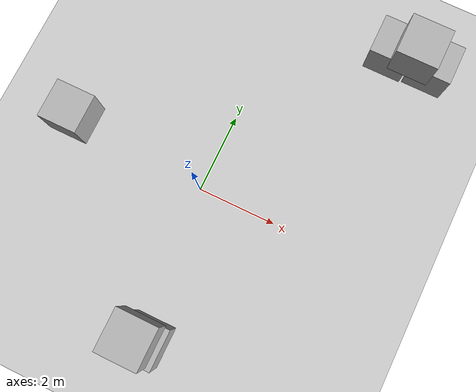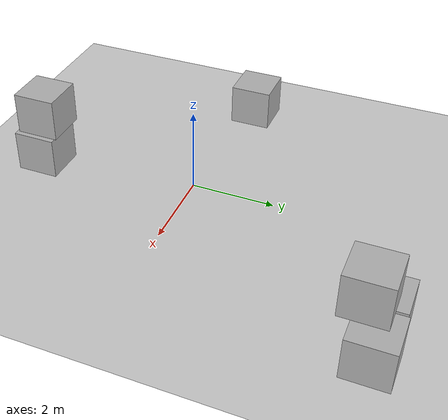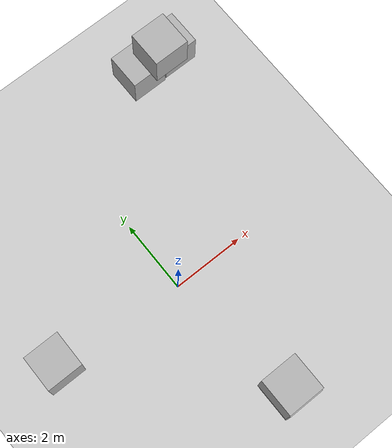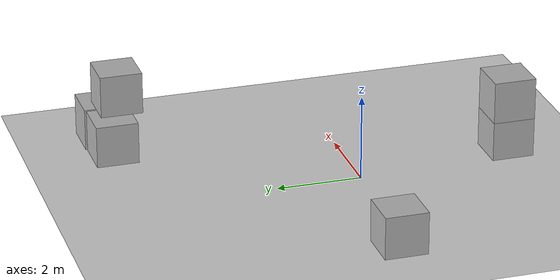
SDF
<?xml version="1.0"?>
<sdf version='1.10'>
  <world name='empty'>
    <physics name='1ms' type='ignored'>
      <max_step_size>0.001</max_step_size>
      <real_time_factor>1</real_time_factor>
      <real_time_update_rate>1000</real_time_update_rate>
    </physics>
    <plugin name='gz::sim::systems::Physics' filename='gz-sim-physics-system'/>
    <plugin name='gz::sim::systems::UserCommands' filename='gz-sim-user-commands-system'/>
    <plugin name='gz::sim::systems::SceneBroadcaster' filename='gz-sim-scene-broadcaster-system'/>
    <plugin name='gz::sim::systems::Contact' filename='gz-sim-contact-system'/>
    <plugin name='gz::sim::systems::Sensors' filename='gz-sim-sensors-system'/>
    <gravity>0 0 -9.8000000000000007</gravity>
    <magnetic_field>5.5644999999999998e-06 2.2875799999999999e-05 -4.2388400000000002e-05</magnetic_field>
    <atmosphere type='adiabatic'/>
    <scene>
      <ambient>0.400000006 0.400000006 0.400000006 1</ambient>
      <background>0.699999988 0.699999988 0.699999988 1</background>
      <shadows>true</shadows>
    </scene>
    <model name='ground_plane'>
      <static>true</static>
      <link name='link'>
        <collision name='collision'>
          <geometry>
            <plane>
              <normal>0 0 1</normal>
              <size>100 100</size>
            </plane>
          </geometry>
          <surface>
            <friction>
              <ode/>
            </friction>
            <bounce/>
            <contact/>
          </surface>
        </collision>
        <visual name='visual'>
          <geometry>
            <plane>
              <normal>0 0 1</normal>
              <size>100 100</size>
            </plane>
          </geometry>
          <material>
            <ambient>0.800000012 0.800000012 0.800000012 1</ambient>
            <diffuse>0.800000012 0.800000012 0.800000012 1</diffuse>
            <specular>0.800000012 0.800000012 0.800000012 1</specular>
          </material>
        </visual>
        <pose>0 0 0 0 0 0</pose>
        <inertial>
          <pose>0 0 0 0 0 0</pose>
          <mass>1</mass>
          <inertia>
            <ixx>1</ixx>
            <ixy>0</ixy>
            <ixz>0</ixz>
            <iyy>1</iyy>
            <iyz>0</iyz>
            <izz>1</izz>
          </inertia>
        </inertial>
        <enable_wind>false</enable_wind>
      </link>
      <pose>0 0 0 0 0 0</pose>
      <self_collide>false</self_collide>
    </model>
    <model name='box'>
      <pose>0.46925724908663136 -3.7243041404713408 0.49999998990649808 -2.9880355912715605e-07 -2.7943082543804519e-07 -2.098298258005936e-08</pose>
      <link name='box_link'>
        <inertial>
          <inertia>
            <ixx>0.16666</ixx>
            <ixy>0</ixy>
            <ixz>0</ixz>
            <iyy>0.16666</iyy>
            <iyz>0</iyz>
            <izz>0.16666</izz>
          </inertia>
          <mass>1</mass>
          <pose>0 0 0 0 0 0</pose>
        </inertial>
        <collision name='box_collision'>
          <geometry>
            <box>
              <size>1 1 1</size>
            </box>
          </geometry>
          <surface>
            <friction>
              <ode/>
            </friction>
            <bounce/>
            <contact/>
          </surface>
        </collision>
        <visual name='box_visual'>
          <geometry>
            <box>
              <size>1 1 1</size>
            </box>
          </geometry>
          <material>
            <ambient>0.300000012 0.300000012 0.300000012 1</ambient>
            <diffuse>0.699999988 0.699999988 0.699999988 1</diffuse>
            <specular>1 1 1 1</specular>
          </material>
        </visual>
        <pose>0 0 0 0 0 0</pose>
        <enable_wind>false</enable_wind>
      </link>
      <static>false</static>
      <self_collide>false</self_collide>
    </model>
    <model name='box_0'>
      <pose>0.3434151123649572 -3.6765694865789622 1.4999990716823073 -3.0287731065792687e-07 -3.1087145384578591e-07 -1.5182614716519812e-08</pose>
      <link name='box_link'>
        <inertial>
          <inertia>
            <ixx>0.16666</ixx>
            <ixy>0</ixy>
            <ixz>0</ixz>
            <iyy>0.16666</iyy>
            <iyz>0</iyz>
            <izz>0.16666</izz>
          </inertia>
          <mass>1</mass>
          <pose>0 0 0 0 0 0</pose>
        </inertial>
        <collision name='box_collision'>
          <geometry>
            <box>
              <size>1 1 1</size>
            </box>
          </geometry>
          <surface>
            <friction>
              <ode/>
            </friction>
            <bounce/>
            <contact/>
          </surface>
        </collision>
        <visual name='box_visual'>
          <geometry>
            <box>
              <size>1 1 1</size>
            </box>
          </geometry>
          <material>
            <ambient>0.300000012 0.300000012 0.300000012 1</ambient>
            <diffuse>0.699999988 0.699999988 0.699999988 1</diffuse>
            <specular>1 1 1 1</specular>
          </material>
        </visual>
        <pose>0 0 0 0 0 0</pose>
        <enable_wind>false</enable_wind>
      </link>
      <static>false</static>
      <self_collide>false</self_collide>
    </model>
    <model name='box_1'>
      <pose>3.8670279733296899 5.1916784520283183 0.49999999004518225 2.6082649398111895e-10 1.9329553968995906e-08 1.5409594235111986e-07</pose>
      <link name='box_link'>
        <inertial>
          <inertia>
            <ixx>0.16666</ixx>
            <ixy>0</ixy>
            <ixz>0</ixz>
            <iyy>0.16666</iyy>
            <iyz>0</iyz>
            <izz>0.16666</izz>
          </inertia>
          <mass>1</mass>
          <pose>0 0 0 0 0 0</pose>
        </inertial>
        <collision name='box_collision'>
          <geometry>
            <box>
              <size>1 1 1</size>
            </box>
          </geometry>
          <surface>
            <friction>
              <ode/>
            </friction>
            <bounce/>
            <contact/>
          </surface>
        </collision>
        <visual name='box_visual'>
          <geometry>
            <box>
              <size>1 1 1</size>
            </box>
          </geometry>
          <material>
            <ambient>0.300000012 0.300000012 0.300000012 1</ambient>
            <diffuse>0.699999988 0.699999988 0.699999988 1</diffuse>
            <specular>1 1 1 1</specular>
          </material>
        </visual>
        <pose>0 0 0 0 0 0</pose>
        <enable_wind>false</enable_wind>
      </link>
      <static>false</static>
      <self_collide>false</self_collide>
    </model>
    <model name='box_2'>
      <pose>2.8079786121645962 5.1600251196550522 0.49999999004356083 2.635019096346777e-10 -1.9321406306811634e-08 -1.3064830248096183e-07</pose>
      <link name='box_link'>
        <inertial>
          <inertia>
            <ixx>0.16666</ixx>
            <ixy>0</ixy>
            <ixz>0</ixz>
            <iyy>0.16666</iyy>
            <iyz>0</iyz>
            <izz>0.16666</izz>
          </inertia>
          <mass>1</mass>
          <pose>0 0 0 0 0 0</pose>
        </inertial>
        <collision name='box_collision'>
          <geometry>
            <box>
              <size>1 1 1</size>
            </box>
          </geometry>
          <surface>
            <friction>
              <ode/>
            </friction>
            <bounce/>
            <contact/>
          </surface>
        </collision>
        <visual name='box_visual'>
          <geometry>
            <box>
              <size>1 1 1</size>
            </box>
          </geometry>
          <material>
            <ambient>0.300000012 0.300000012 0.300000012 1</ambient>
            <diffuse>0.699999988 0.699999988 0.699999988 1</diffuse>
            <specular>1 1 1 1</specular>
          </material>
        </visual>
        <pose>0 0 0 0 0 0</pose>
        <enable_wind>false</enable_wind>
      </link>
      <static>false</static>
      <self_collide>false</self_collide>
    </model>
    <model name='box_3'>
      <pose>3.350069923009003 4.911272554174043 1.4999988246257399 -4.8757319438366078e-06 -1.5429770682204925e-07 1.5837136051852876e-09</pose>
      <link name='box_link'>
        <inertial>
          <inertia>
            <ixx>0.16666</ixx>
            <ixy>0</ixy>
            <ixz>0</ixz>
            <iyy>0.16666</iyy>
            <iyz>0</iyz>
            <izz>0.16666</izz>
          </inertia>
          <mass>1</mass>
          <pose>0 0 0 0 0 0</pose>
        </inertial>
        <collision name='box_collision'>
          <geometry>
            <box>
              <size>1 1 1</size>
            </box>
          </geometry>
          <surface>
            <friction>
              <ode/>
            </friction>
            <bounce/>
            <contact/>
          </surface>
        </collision>
        <visual name='box_visual'>
          <geometry>
            <box>
              <size>1 1 1</size>
            </box>
          </geometry>
          <material>
            <ambient>0.300000012 0.300000012 0.300000012 1</ambient>
            <diffuse>0.699999988 0.699999988 0.699999988 1</diffuse>
            <specular>1 1 1 1</specular>
          </material>
        </visual>
        <pose>0 0 0 0 0 0</pose>
        <enable_wind>false</enable_wind>
      </link>
      <static>false</static>
      <self_collide>false</self_collide>
    </model>
    <model name='box_4'>
      <pose>-3.5799712460090691 0.30120973461562783 0.49999999990199806 2.7978952040515579e-21 -1.4341784499369103e-22 3.1137257328605568e-22</pose>
      <link name='box_link'>
        <inertial>
          <inertia>
            <ixx>0.16666</ixx>
            <ixy>0</ixy>
            <ixz>0</ixz>
            <iyy>0.16666</iyy>
            <iyz>0</iyz>
            <izz>0.16666</izz>
          </inertia>
          <mass>1</mass>
          <pose>0 0 0 0 0 0</pose>
        </inertial>
        <collision name='box_collision'>
          <geometry>
            <box>
              <size>1 1 1</size>
            </box>
          </geometry>
          <surface>
            <friction>
              <ode/>
            </friction>
            <bounce/>
            <contact/>
          </surface>
        </collision>
        <visual name='box_visual'>
          <geometry>
            <box>
              <size>1 1 1</size>
            </box>
          </geometry>
          <material>
            <ambient>0.300000012 0.300000012 0.300000012 1</ambient>
            <diffuse>0.699999988 0.699999988 0.699999988 1</diffuse>
            <specular>1 1 1 1</specular>
          </material>
        </visual>
        <pose>0 0 0 0 0 0</pose>
        <enable_wind>false</enable_wind>
      </link>
      <static>false</static>
      <self_collide>false</self_collide>
    </model>
    <light name='sun' type='directional'>
      <pose>0 0 10 0 0 0</pose>
      <cast_shadows>true</cast_shadows>
      <intensity>1</intensity>
      <direction>-0.5 0.10000000000000001 -0.90000000000000002</direction>
      <diffuse>0.800000012 0.800000012 0.800000012 1</diffuse>
      <specular>0.200000003 0.200000003 0.200000003 1</specular>
      <attenuation>
        <range>1000</range>
        <linear>0.01</linear>
        <constant>0.90000000000000002</constant>
        <quadratic>0.001</quadratic>
      </attenuation>
      <spot>
        <inner_angle>0</inner_angle>
        <outer_angle>0</outer_angle>
        <falloff>0</falloff>
      </spot>
    </light>
  </world>
</sdf>
